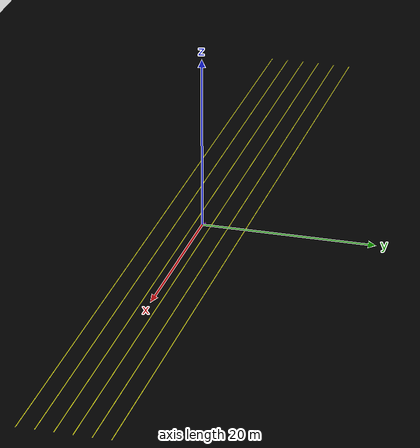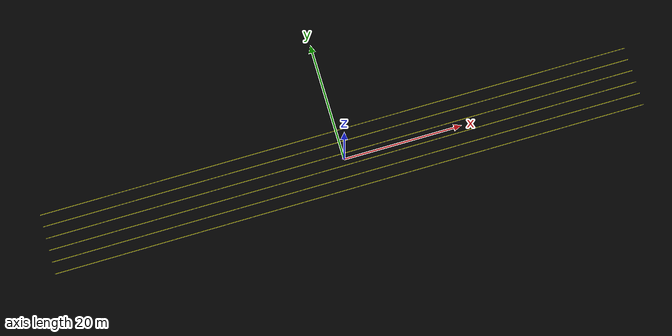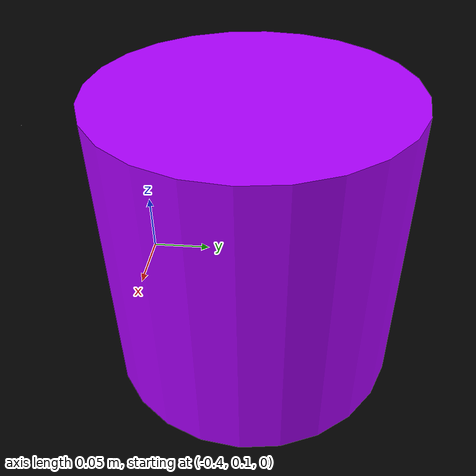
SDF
<?xml version="1.0" ?>
<sdf version="1.5">
  <world name="empty">
    <physics name="1ms" type="ignored">
      <max_step_size>0.001</max_step_size>
      <real_time_factor>1.0</real_time_factor>
    </physics>
    <plugin
      filename="ignition-gazebo-physics-system"
      name="ignition::gazebo::systems::Physics">
    </plugin>
    <plugin
      filename="ignition-gazebo-user-commands-system"
      name="ignition::gazebo::systems::UserCommands">
    </plugin>
    <plugin
      filename="ignition-gazebo-scene-broadcaster-system"
      name="ignition::gazebo::systems::SceneBroadcaster">
    </plugin>
    <plugin
      filename="ignition-gazebo-contact-system"
      name="ignition::gazebo::systems::Contact">
    </plugin>
    <plugin
      filename="libignition-gazebo-sensors-system.so"
      name="ignition::gazebo::systems::Sensors">
      <render_engine>ogre2</render_engine>
    </plugin>
    <plugin filename="libignition-gazebo-imu-system.so"
      name="ignition::gazebo::systems::Imu">
    </plugin>

    <light type="directional" name="sun">
      <cast_shadows>true</cast_shadows>
      <pose>0 0 10 0 0 0</pose>
      <diffuse>0.8 0.8 0.8 1</diffuse>
      <specular>0.2 0.2 0.2 1</specular>
      <attenuation>
        <range>1000</range>
        <constant>0.9</constant>
        <linear>0.01</linear>
        <quadratic>0.001</quadratic>
      </attenuation>
      <direction>-0.5 0.1 -0.9</direction>
    </light>

    <model name="ground_plane">
      <static>true</static>
      <link name="link">
        <collision name="collision">
          <geometry>
            <plane>
              <normal>0 0 1</normal>
              <size>500 500</size>
            </plane>
          </geometry>
        </collision>
        <visual name="visual">
          <geometry>
            <plane>
              <normal>0 0 1</normal>
              <size>500 500</size>
            </plane>
          </geometry>
          <material>
            <ambient>0.0 0.0 0.0 1</ambient>
            <diffuse>0.0 0.0 0.0 1</diffuse>
            <specular>0.0 0.0 0.0 1</specular>
          </material>
        </visual>
      </link>
    </model>
        <!-- Add lane markings using visuals -->
    <!-- Center line 1 -->
    <model name="center_line_1">
      <static>true</static>
      <pose>0 -1 0 0 0 0</pose>
      <link name="line_link">
        <visual name="line_visual">
          <geometry>
            <box>
              <size>100 0.1 0.002</size>
            </box>
          </geometry>
          <material>
            <ambient>1 1 0 1</ambient> <!-- yellow line -->
            <diffuse>1 1 0 1</diffuse>
          </material>
        </visual>
      </link>
    </model>

    <!-- Center line 2 -->
    <model name="center_line_2">
      <static>true</static>
      <pose>0 1 0 0 0 0</pose>
      <link name="line_link">
        <visual name="line_visual">
          <geometry>
            <box>
              <size>100 0.1 0.002</size>
            </box>
          </geometry>
          <material>
            <ambient>1 1 0 1</ambient> <!-- yellow line -->
            <diffuse>1 1 0 1</diffuse>
          </material>
        </visual>
      </link>
    </model>

    <!-- Center line 3 -->
    <model name="center_line_3">
      <static>true</static>
      <pose>0 3 0 0 0 0</pose>
      <link name="line_link">
        <visual name="line_visual">
          <geometry>
            <box>
              <size>100 0.1 0.002</size>
            </box>
          </geometry>
          <material>
            <ambient>1 1 0 1</ambient> <!-- yellow line -->
            <diffuse>1 1 0 1</diffuse>
          </material>
        </visual>
      </link>
    </model>

    <!-- Center line 4 -->
    <model name="center_line_4">
      <static>true</static>
      <pose>0 -3 0 0 0 0</pose>
      <link name="line_link">
        <visual name="line_visual">
          <geometry>
            <box>
              <size>100 0.1 0.002</size>
            </box>
          </geometry>
          <material>
            <ambient>1 1 0 1</ambient> <!-- yellow line -->
            <diffuse>1 1 0 1</diffuse>
          </material>
        </visual>
      </link>
    </model>

    <!-- Center line 5 -->
    <model name="center_line_5">
      <static>true</static>
      <pose>0 -5 0 0 0 0</pose>
      <link name="line_link">
        <visual name="line_visual">
          <geometry>
            <box>
              <size>100 0.1 0.002</size>
            </box>
          </geometry>
          <material>
            <ambient>1 1 0 1</ambient> <!-- yellow line -->
            <diffuse>1 1 0 1</diffuse>
          </material>
        </visual>
      </link>
    </model>
    <!-- Center line 6 -->
    <model name="center_line_6">
      <static>true</static>
      <pose>0 5 0 0 0 0</pose>
      <link name="line_link">
        <visual name="line_visual">
          <geometry>
            <box>
              <size>100 0.1 0.002</size>
            </box>
          </geometry>
          <material>
            <ambient>1 1 0 1</ambient> <!-- yellow line -->
            <diffuse>1 1 0 1</diffuse>
          </material>
        </visual>
      </link>
    </model>

    <!-- Spawning Model "cylinder_v" at (-0.3, 0.2, 0.0) -->
    <include>
      <uri>model://cylinder_v</uri>
      <name>cylinder_v</name>
      <pose>-0.3 0.2 0.0 0 0 3.1416</pose>
    </include>

  </world>
</sdf>

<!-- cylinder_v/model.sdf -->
<sdf version='1.6'>
  <model name='cylinder_v'>
    <link name='link_0'>
      <pose frame=''>0 0 0.1 0 -0 0</pose>
      <inertial>
        <mass>1</mass>
        <inertia>
          <ixx>0.145833</ixx>
          <ixy>0</ixy>
          <ixz>0</ixz>
          <iyy>0.145833</iyy>
          <iyz>0</iyz>
          <izz>0.125</izz>
        </inertia>
        <pose frame=''>0 0 0 0 -0 0</pose>
      </inertial>
      <gravity>1</gravity>
      <self_collide>0</self_collide>
      <kinematic>0</kinematic>
      <visual name='visual'>
        <pose frame=''>0 0 0 0 -0 0</pose>
        <geometry>
          <cylinder>
            <radius>0.1</radius>
            <length>0.2</length>
          </cylinder>
        </geometry>
        <material>
          <lighting>1</lighting>
          <script>
            <uri>file://media/materials/scripts/gazebo.material</uri>
            <name>Gazebo/Grey</name>
          </script>
          <ambient>0.682 0 1 1</ambient>
          <diffuse>0.682 0 1 1</diffuse>
          <specular>0 0 0 1</specular>
          <emissive>0 0 0 1</emissive>
          <shader type='vertex'>
            <normal_map>__default__</normal_map>
          </shader>
        </material>
        <cast_shadows>1</cast_shadows>
        <transparency>0</transparency>
      </visual>
      <collision name='collision'>
        <laser_retro>0</laser_retro>
        <max_contacts>10</max_contacts>
        <pose frame=''>0 0 0 0 -0 0</pose>
        <geometry>
          <cylinder>
            <radius>0.1</radius>
            <length>0.2</length>
          </cylinder>
        </geometry>
        <surface>
          <friction>
            <ode>
              <mu>1</mu>
              <mu2>1</mu2>
              <fdir1>0 0 0</fdir1>
              <slip1>0</slip1>
              <slip2>0</slip2>
            </ode>
            <torsional>
              <coefficient>1</coefficient>
              <patch_radius>0</patch_radius>
              <surface_radius>0</surface_radius>
              <use_patch_radius>1</use_patch_radius>
              <ode>
                <slip>0</slip>
              </ode>
            </torsional>
          </friction>
          <bounce>
            <restitution_coefficient>0</restitution_coefficient>
            <threshold>1e+06</threshold>
          </bounce>
          <contact>
            <collide_without_contact>0</collide_without_contact>
            <collide_without_contact_bitmask>1</collide_without_contact_bitmask>
            <collide_bitmask>1</collide_bitmask>
            <ode>
              <soft_cfm>0</soft_cfm>
              <soft_erp>0.2</soft_erp>
              <kp>1e+13</kp>
              <kd>1</kd>
              <max_vel>0.01</max_vel>
              <min_depth>0</min_depth>
            </ode>
            <bullet>
              <split_impulse>1</split_impulse>
              <split_impulse_penetration_threshold>-0.01</split_impulse_penetration_threshold>
              <soft_cfm>0</soft_cfm>
              <soft_erp>0.2</soft_erp>
              <kp>1e+13</kp>
              <kd>1</kd>
            </bullet>
          </contact>
        </surface>
      </collision>
    </link>
    <static>1</static>
    <allow_auto_disable>1</allow_auto_disable>
  </model>
</sdf>
